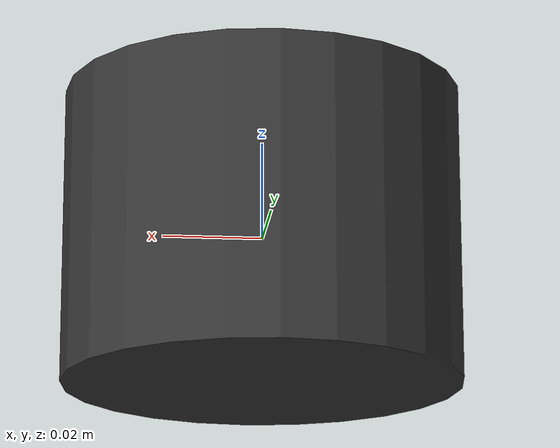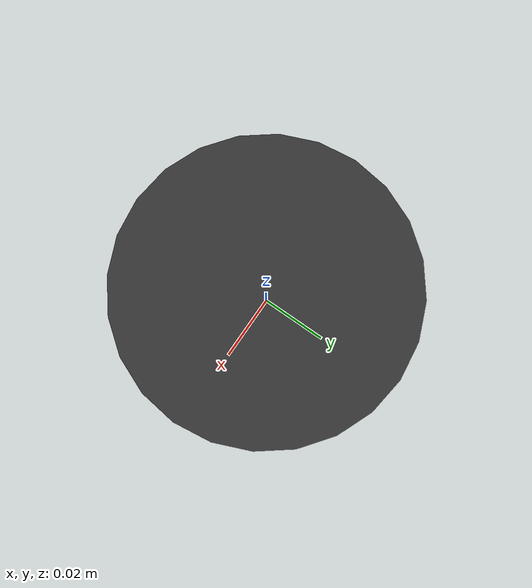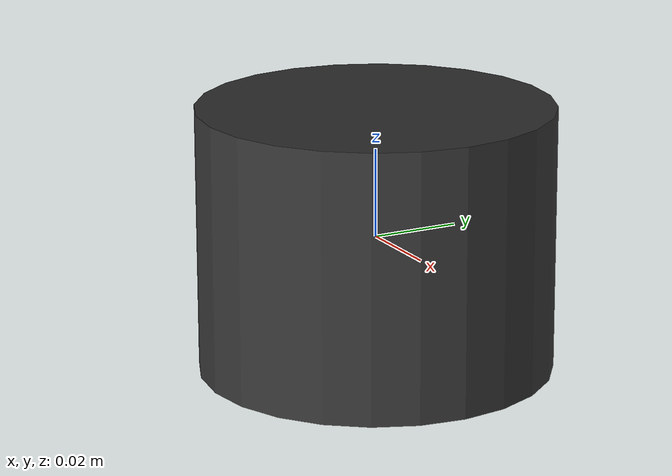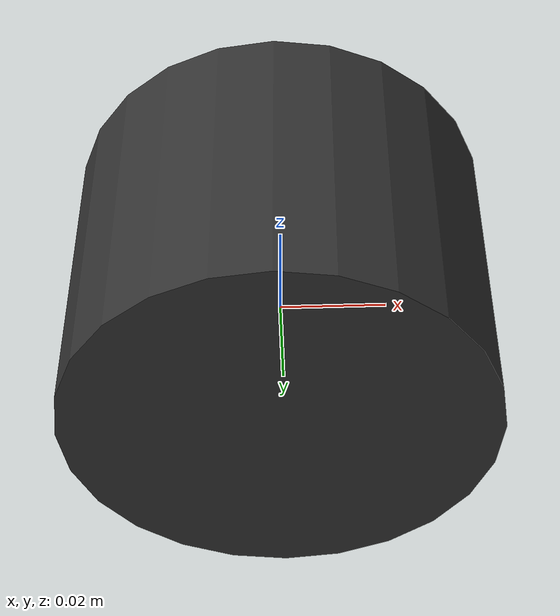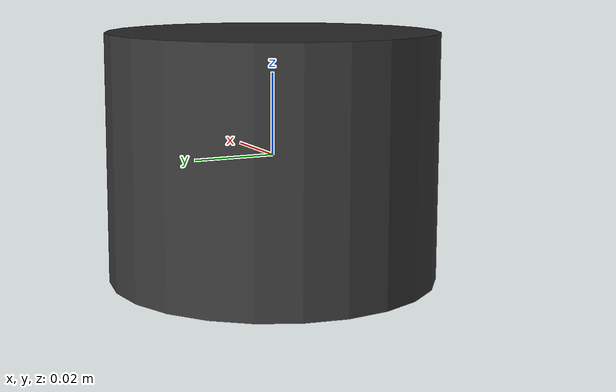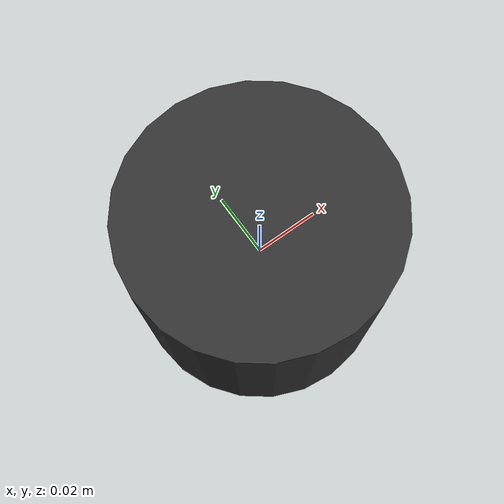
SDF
<?xml version="1.0" ?>
<sdf version="1.8">
  <model name="unitree_lidar">
    <!-- 固定設置する場合は static を true にする -->
    <static>false</static>

    <link name="lidar_link">
      <!-- 視覚形状（外観） -->
      <visual name="visual">
        <geometry>
          <cylinder>
            <radius>0.04</radius>
            <length>0.06</length>
          </cylinder>
        </geometry>
        <material>
          <ambient>0.2 0.2 0.2 1</ambient>
          <diffuse>0.2 0.2 0.2 1</diffuse>
        </material>
      </visual>

      <!-- 衝突判定（固定型なら省略しても動作します） -->
      <collision name="collision">
        <geometry>
          <cylinder>
            <radius>0.04</radius>
            <length>0.06</length>
          </cylinder>
        </geometry>
      </collision>

      <!-- GPU LiDAR センサー -->
      <sensor name="unilidar" type="gpu_lidar">
        <pose>0 0 0 0 0 0</pose>
        <update_rate>11</update_rate> <!-- 更新間隔 -->
        <ray>
          <scan>
            <horizontal>
              <samples>360</samples>
              <resolution>1</resolution>
              <min_angle>-3.14159265</min_angle> <!-- 水平FOV -->
              <max_angle>3.14159265</max_angle>
            </horizontal>
            <vertical>
              <samples>18</samples>
              <resolution>1</resolution>
              <!-- Unitree L1/L2 の超広視野角（±45度） -->
              <min_angle>-0.785398</min_angle> <!-- 垂直FOV -->
              <max_angle>0.785398</max_angle>
            </vertical>
          </scan>
          <range>
            <min>0.05</min>
            <max>50.0</max>
            <resolution>0.01</resolution>
          </range>
          <noise>
            <type>gaussian</type>
            <mean>0.0</mean>
            <stddev>0.005</stddev>
          </noise>
        </ray>
        <always_on>true</always_on>
        <visualize>false</visualize>
        <topic>unilidar/pointcloud</topic>
      </sensor>

      <!-- IMU Sensor -->
      <sensor name="imu_sensor" type="imu">
        <pose>0 0 0 0 0 0</pose>
        <always_on>true</always_on>
        <update_rate>250</update_rate>
        <topic>unilidar/imu</topic>
        <imu>
          <angular_velocity>
            <x>
              <noise type="gaussian">
                <mean>0.0</mean>
                <stddev>0.002</stddev>
              </noise>
            </x>
            <y>
              <noise type="gaussian">
                <mean>0.0</mean>
                <stddev>0.002</stddev>
              </noise>
            </y>
            <z>
              <noise type="gaussian">
                <mean>0.0</mean>
                <stddev>0.002</stddev>
              </noise>
            </z>
          </angular_velocity>
          <linear_acceleration>
            <x>
              <noise type="gaussian">
                <mean>0.0</mean>
                <stddev>0.01</stddev>
              </noise>
            </x>
            <y>
              <noise type="gaussian">
                <mean>0.0</mean>
                <stddev>0.01</stddev>
              </noise>
            </y>
            <z>
              <noise type="gaussian">
                <mean>0.0</mean>
                <stddev>0.01</stddev>
              </noise>
            </z>
          </linear_acceleration>
        </imu>
      </sensor>
    </link>
  </model>
</sdf>
